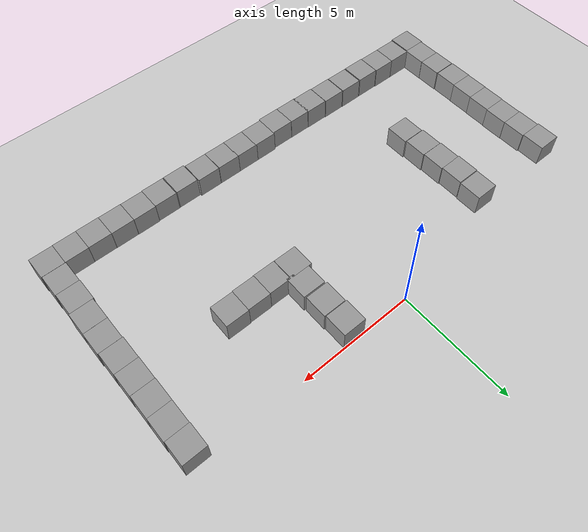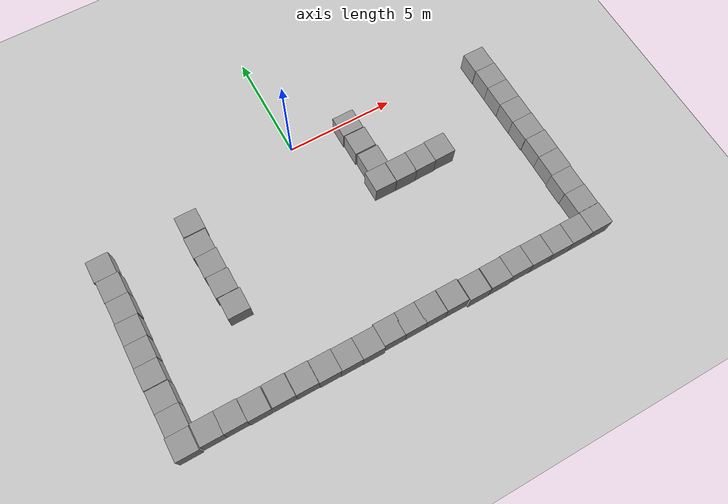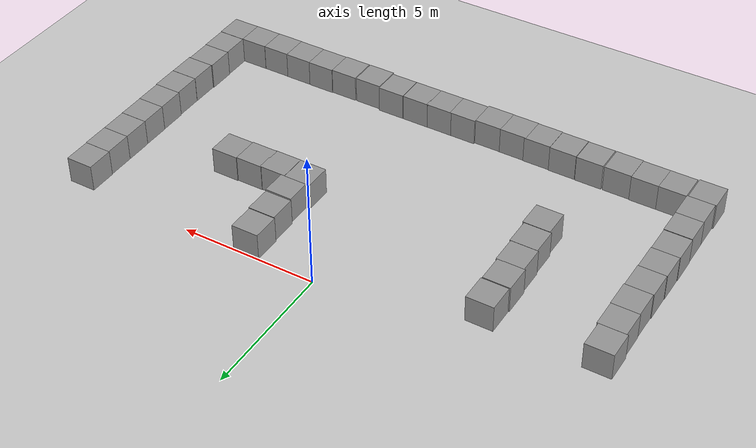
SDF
<sdf version="1.7">
 <world name="default">
  <model name="ground_plane">
   <static>1</static>
   <link name="link">
    <collision name="collision">
     <geometry><plane><normal>0 0 1</normal><size>100 100</size></plane></geometry>
     <surface>
      <contact><collide_bitmask>65535</collide_bitmask></contact>
      <friction><ode><mu>100</mu><mu2>50</mu2></ode></friction>
     </surface>
    </collision>
    <visual name="visual">
     <cast_shadows>0</cast_shadows>
     <geometry><plane><normal>0 0 1</normal><size>100 100</size></plane></geometry>
     <material>
      <script><uri>file://media/materials/scripts/gazebo.material</uri><name>Gazebo/Grey</name></script>
     </material>
    </visual>
   </link>
  </model>
  <model name="unit_box">
   <pose>-9.51327 -9.50621 0.5 0 -0 -0.002436</pose>
   <link name="link">
    <inertial>
     <mass>1</mass>
     <inertia>
      <ixx>0.166667</ixx>
      <ixy>0</ixy>
      <ixz>0</ixz>
      <iyy>0.166667</iyy>
      <iyz>0</iyz>
      <izz>0.166667</izz>
     </inertia>
    </inertial>
    <collision name="collision"><geometry><box><size>1 1 1</size></box></geometry></collision>
    <visual name="visual">
     <geometry><box><size>1 1 1</size></box></geometry>
     <material>
      <script><name>Gazebo/Grey</name><uri>file://media/materials/scripts/gazebo.material</uri></script>
     </material>
    </visual>
   </link>
  </model>
  <model name="unit_box_0">
   <pose>-9.47183 -8.5063 0.5 -0 -0 -0.002438</pose>
   <link name="link">
    <inertial>
     <mass>1</mass>
     <inertia>
      <ixx>0.166667</ixx>
      <ixy>0</ixy>
      <ixz>0</ixz>
      <iyy>0.166667</iyy>
      <iyz>0</iyz>
      <izz>0.166667</izz>
     </inertia>
    </inertial>
    <collision name="collision"><geometry><box><size>1 1 1</size></box></geometry></collision>
    <visual name="visual">
     <geometry><box><size>1 1 1</size></box></geometry>
     <material>
      <script><name>Gazebo/Grey</name><uri>file://media/materials/scripts/gazebo.material</uri></script>
     </material>
    </visual>
   </link>
  </model>
  <model name="unit_box_0_clone">
   <pose>-9.47665 -7.53043 0.499995 0 -1e-05 -0.002496</pose>
   <link name="link">
    <inertial>
     <mass>1</mass>
     <inertia>
      <ixx>0.166667</ixx>
      <ixy>0</ixy>
      <ixz>0</ixz>
      <iyy>0.166667</iyy>
      <iyz>0</iyz>
      <izz>0.166667</izz>
     </inertia>
    </inertial>
    <collision name="collision"><geometry><box><size>1 1 1</size></box></geometry></collision>
    <visual name="visual">
     <geometry><box><size>1 1 1</size></box></geometry>
     <material>
      <script><name>Gazebo/Grey</name><uri>file://media/materials/scripts/gazebo.material</uri></script>
     </material>
    </visual>
   </link>
  </model>
  <model name="unit_box_0_clone_0">
   <pose>-9.49208 -6.5062 0.499995 0 -1e-05 -0.0025</pose>
   <link name="link">
    <inertial>
     <mass>1</mass>
     <inertia>
      <ixx>0.166667</ixx>
      <ixy>0</ixy>
      <ixz>0</ixz>
      <iyy>0.166667</iyy>
      <iyz>0</iyz>
      <izz>0.166667</izz>
     </inertia>
    </inertial>
    <collision name="collision"><geometry><box><size>1 1 1</size></box></geometry></collision>
    <visual name="visual">
     <geometry><box><size>1 1 1</size></box></geometry>
     <material>
      <script><name>Gazebo/Grey</name><uri>file://media/materials/scripts/gazebo.material</uri></script>
     </material>
    </visual>
   </link>
  </model>
  <model name="unit_box_0_clone_1">
   <pose>-9.47626 -5.50624 0.499995 0 -1e-05 -0.002502</pose>
   <link name="link">
    <inertial>
     <mass>1</mass>
     <inertia>
      <ixx>0.166667</ixx>
      <ixy>0</ixy>
      <ixz>0</ixz>
      <iyy>0.166667</iyy>
      <iyz>0</iyz>
      <izz>0.166667</izz>
     </inertia>
    </inertial>
    <collision name="collision"><geometry><box><size>1 1 1</size></box></geometry></collision>
    <visual name="visual">
     <geometry><box><size>1 1 1</size></box></geometry>
     <material>
      <script><name>Gazebo/Grey</name><uri>file://media/materials/scripts/gazebo.material</uri></script>
     </material>
    </visual>
   </link>
  </model>
  <model name="unit_box_0_clone_2">
   <pose>-9.4605 -4.50624 0.5 -0 -0 -0.002559</pose>
   <link name="link">
    <inertial>
     <mass>1</mass>
     <inertia>
      <ixx>0.166667</ixx>
      <ixy>0</ixy>
      <ixz>0</ixz>
      <iyy>0.166667</iyy>
      <iyz>0</iyz>
      <izz>0.166667</izz>
     </inertia>
    </inertial>
    <collision name="collision"><geometry><box><size>1 1 1</size></box></geometry></collision>
    <visual name="visual">
     <geometry><box><size>1 1 1</size></box></geometry>
     <material>
      <script><name>Gazebo/Grey</name><uri>file://media/materials/scripts/gazebo.material</uri></script>
     </material>
    </visual>
   </link>
  </model>
  <model name="unit_box_0_clone_3">
   <pose>-9.43668 -3.50629 0.499995 -1e-05 0 -0.002576</pose>
   <link name="link">
    <inertial>
     <mass>1</mass>
     <inertia>
      <ixx>0.166667</ixx>
      <ixy>0</ixy>
      <ixz>0</ixz>
      <iyy>0.166667</iyy>
      <iyz>0</iyz>
      <izz>0.166667</izz>
     </inertia>
    </inertial>
    <collision name="collision"><geometry><box><size>1 1 1</size></box></geometry></collision>
    <visual name="visual">
     <geometry><box><size>1 1 1</size></box></geometry>
     <material>
      <script><name>Gazebo/Grey</name><uri>file://media/materials/scripts/gazebo.material</uri></script>
     </material>
    </visual>
   </link>
  </model>
  <model name="unit_box_0_clone_4">
   <pose>-9.44901 -2.50624 0.5 0 0 -0.002604</pose>
   <link name="link">
    <inertial>
     <mass>1</mass>
     <inertia>
      <ixx>0.166667</ixx>
      <ixy>0</ixy>
      <ixz>0</ixz>
      <iyy>0.166667</iyy>
      <iyz>0</iyz>
      <izz>0.166667</izz>
     </inertia>
    </inertial>
    <collision name="collision"><geometry><box><size>1 1 1</size></box></geometry></collision>
    <visual name="visual">
     <geometry><box><size>1 1 1</size></box></geometry>
     <material>
      <script><name>Gazebo/Grey</name><uri>file://media/materials/scripts/gazebo.material</uri></script>
     </material>
    </visual>
   </link>
  </model>
  <model name="unit_box_0_clone_5">
   <pose>-9.49911 -1.50602 0.5 0 0 -0.002766</pose>
   <link name="link">
    <inertial>
     <mass>1</mass>
     <inertia>
      <ixx>0.166667</ixx>
      <ixy>0</ixy>
      <ixz>0</ixz>
      <iyy>0.166667</iyy>
      <iyz>0</iyz>
      <izz>0.166667</izz>
     </inertia>
    </inertial>
    <collision name="collision"><geometry><box><size>1 1 1</size></box></geometry></collision>
    <visual name="visual">
     <geometry><box><size>1 1 1</size></box></geometry>
     <material>
      <script><name>Gazebo/Grey</name><uri>file://media/materials/scripts/gazebo.material</uri></script>
     </material>
    </visual>
   </link>
  </model>
  <model name="unit_box_0_clone_45">
   <pose>9.46141 -0.551452 0.499995 0 1e-05 -0.001599</pose>
   <link name="link">
    <inertial>
     <mass>1</mass>
     <inertia>
      <ixx>0.166667</ixx>
      <ixy>0</ixy>
      <ixz>0</ixz>
      <iyy>0.166667</iyy>
      <iyz>0</iyz>
      <izz>0.166667</izz>
     </inertia>
    </inertial>
    <collision name="collision"><geometry><box><size>1 1 1</size></box></geometry></collision>
    <visual name="visual">
     <geometry><box><size>1 1 1</size></box></geometry>
     <material>
      <script><name>Gazebo/Grey</name><uri>file://media/materials/scripts/gazebo.material</uri></script>
     </material>
    </visual>
   </link>
  </model>
  <model name="unit_box_0_clone_46">
   <pose>9.47739 -1.55163 0.5 1e-06 -0 -0.001295</pose>
   <link name="link">
    <inertial>
     <mass>1</mass>
     <inertia>
      <ixx>0.166667</ixx>
      <ixy>0</ixy>
      <ixz>0</ixz>
      <iyy>0.166667</iyy>
      <iyz>0</iyz>
      <izz>0.166667</izz>
     </inertia>
    </inertial>
    <collision name="collision"><geometry><box><size>1 1 1</size></box></geometry></collision>
    <visual name="visual">
     <geometry><box><size>1 1 1</size></box></geometry>
     <material>
      <script><name>Gazebo/Grey</name><uri>file://media/materials/scripts/gazebo.material</uri></script>
     </material>
    </visual>
   </link>
  </model>
  <model name="unit_box_0_clone_47">
   <pose>9.47653 -2.55164 0.5 -1e-06 -0 -0.001294</pose>
   <link name="link">
    <inertial>
     <mass>1</mass>
     <inertia>
      <ixx>0.166667</ixx>
      <ixy>0</ixy>
      <ixz>0</ixz>
      <iyy>0.166667</iyy>
      <iyz>0</iyz>
      <izz>0.166667</izz>
     </inertia>
    </inertial>
    <collision name="collision"><geometry><box><size>1 1 1</size></box></geometry></collision>
    <visual name="visual">
     <geometry><box><size>1 1 1</size></box></geometry>
     <material>
      <script><name>Gazebo/Grey</name><uri>file://media/materials/scripts/gazebo.material</uri></script>
     </material>
    </visual>
   </link>
  </model>
  <model name="unit_box_0_clone_48">
   <pose>9.48417 -3.55209 0.499995 0 -1e-05 -0.001107</pose>
   <link name="link">
    <inertial>
     <mass>1</mass>
     <inertia>
      <ixx>0.166667</ixx>
      <ixy>0</ixy>
      <ixz>0</ixz>
      <iyy>0.166667</iyy>
      <iyz>0</iyz>
      <izz>0.166667</izz>
     </inertia>
    </inertial>
    <collision name="collision"><geometry><box><size>1 1 1</size></box></geometry></collision>
    <visual name="visual">
     <geometry><box><size>1 1 1</size></box></geometry>
     <material>
      <script><name>Gazebo/Grey</name><uri>file://media/materials/scripts/gazebo.material</uri></script>
     </material>
    </visual>
   </link>
  </model>
  <model name="unit_box_0_clone_49">
   <pose>9.49225 -4.55211 0.499995 -0 -1e-05 -0.0011</pose>
   <link name="link">
    <inertial>
     <mass>1</mass>
     <inertia>
      <ixx>0.166667</ixx>
      <ixy>0</ixy>
      <ixz>0</ixz>
      <iyy>0.166667</iyy>
      <iyz>0</iyz>
      <izz>0.166667</izz>
     </inertia>
    </inertial>
    <collision name="collision"><geometry><box><size>1 1 1</size></box></geometry></collision>
    <visual name="visual">
     <geometry><box><size>1 1 1</size></box></geometry>
     <material>
      <script><name>Gazebo/Grey</name><uri>file://media/materials/scripts/gazebo.material</uri></script>
     </material>
    </visual>
   </link>
  </model>
  <model name="unit_box_0_clone_50">
   <pose>9.51872 -5.55255 0.499995 0 1e-05 -0.001275</pose>
   <link name="link">
    <inertial>
     <mass>1</mass>
     <inertia>
      <ixx>0.166667</ixx>
      <ixy>0</ixy>
      <ixz>0</ixz>
      <iyy>0.166667</iyy>
      <iyz>0</iyz>
      <izz>0.166667</izz>
     </inertia>
    </inertial>
    <collision name="collision"><geometry><box><size>1 1 1</size></box></geometry></collision>
    <visual name="visual">
     <geometry><box><size>1 1 1</size></box></geometry>
     <material>
      <script><name>Gazebo/Grey</name><uri>file://media/materials/scripts/gazebo.material</uri></script>
     </material>
    </visual>
   </link>
  </model>
  <model name="unit_box_0_clone_51">
   <pose>9.51322 -6.55333 0.5 0 -0 -0.001544</pose>
   <link name="link">
    <inertial>
     <mass>1</mass>
     <inertia>
      <ixx>0.166667</ixx>
      <ixy>0</ixy>
      <ixz>0</ixz>
      <iyy>0.166667</iyy>
      <iyz>0</iyz>
      <izz>0.166667</izz>
     </inertia>
    </inertial>
    <collision name="collision"><geometry><box><size>1 1 1</size></box></geometry></collision>
    <visual name="visual">
     <geometry><box><size>1 1 1</size></box></geometry>
     <material>
      <script><name>Gazebo/Grey</name><uri>file://media/materials/scripts/gazebo.material</uri></script>
     </material>
    </visual>
   </link>
  </model>
  <model name="unit_box_0_clone_52">
   <pose>9.47953 -7.55339 0.499995 0 -1e-05 -0.001786</pose>
   <link name="link">
    <inertial>
     <mass>1</mass>
     <inertia>
      <ixx>0.166667</ixx>
      <ixy>0</ixy>
      <ixz>0</ixz>
      <iyy>0.166667</iyy>
      <iyz>0</iyz>
      <izz>0.166667</izz>
     </inertia>
    </inertial>
    <collision name="collision"><geometry><box><size>1 1 1</size></box></geometry></collision>
    <visual name="visual">
     <geometry><box><size>1 1 1</size></box></geometry>
     <material>
      <script><name>Gazebo/Grey</name><uri>file://media/materials/scripts/gazebo.material</uri></script>
     </material>
    </visual>
   </link>
  </model>
  <model name="unit_box_0_clone_53">
   <pose>9.49521 -8.55344 0.5 0 0 -0.00182</pose>
   <link name="link">
    <inertial>
     <mass>1</mass>
     <inertia>
      <ixx>0.166667</ixx>
      <ixy>0</ixy>
      <ixz>0</ixz>
      <iyy>0.166667</iyy>
      <iyz>0</iyz>
      <izz>0.166667</izz>
     </inertia>
    </inertial>
    <collision name="collision"><geometry><box><size>1 1 1</size></box></geometry></collision>
    <visual name="visual">
     <geometry><box><size>1 1 1</size></box></geometry>
     <material>
      <script><name>Gazebo/Grey</name><uri>file://media/materials/scripts/gazebo.material</uri></script>
     </material>
    </visual>
   </link>
  </model>
  <model name="unit_box_0_clone_54">
   <pose>9.51539 -9.55784 0.5 -0 -0 -0.001477</pose>
   <link name="link">
    <inertial>
     <mass>1</mass>
     <inertia>
      <ixx>0.166667</ixx>
      <ixy>0</ixy>
      <ixz>0</ixz>
      <iyy>0.166667</iyy>
      <iyz>0</iyz>
      <izz>0.166667</izz>
     </inertia>
    </inertial>
    <collision name="collision"><geometry><box><size>1 1 1</size></box></geometry></collision>
    <visual name="visual">
     <geometry><box><size>1 1 1</size></box></geometry>
     <material>
      <script><name>Gazebo/Grey</name><uri>file://media/materials/scripts/gazebo.material</uri></script>
     </material>
    </visual>
   </link>
  </model>
  <model name="unit_box_0_clone_55">
   <pose>8.51534 -9.5654 0.5 0 0 -0.001417</pose>
   <link name="link">
    <inertial>
     <mass>1</mass>
     <inertia>
      <ixx>0.166667</ixx>
      <ixy>0</ixy>
      <ixz>0</ixz>
      <iyy>0.166667</iyy>
      <iyz>0</iyz>
      <izz>0.166667</izz>
     </inertia>
    </inertial>
    <collision name="collision"><geometry><box><size>1 1 1</size></box></geometry></collision>
    <visual name="visual">
     <geometry><box><size>1 1 1</size></box></geometry>
     <material>
      <script><name>Gazebo/Grey</name><uri>file://media/materials/scripts/gazebo.material</uri></script>
     </material>
    </visual>
   </link>
  </model>
  <model name="unit_box_0_clone_56">
   <pose>7.51533 -9.5691 0.5 -0 -0 -0.00142</pose>
   <link name="link">
    <inertial>
     <mass>1</mass>
     <inertia>
      <ixx>0.166667</ixx>
      <ixy>0</ixy>
      <ixz>0</ixz>
      <iyy>0.166667</iyy>
      <iyz>0</iyz>
      <izz>0.166667</izz>
     </inertia>
    </inertial>
    <collision name="collision"><geometry><box><size>1 1 1</size></box></geometry></collision>
    <visual name="visual">
     <geometry><box><size>1 1 1</size></box></geometry>
     <material>
      <script><name>Gazebo/Grey</name><uri>file://media/materials/scripts/gazebo.material</uri></script>
     </material>
    </visual>
   </link>
  </model>
  <model name="unit_box_0_clone_57">
   <pose>6.51518 -9.55776 0.499995 1e-05 0 -0.001227</pose>
   <link name="link">
    <inertial>
     <mass>1</mass>
     <inertia>
      <ixx>0.166667</ixx>
      <ixy>0</ixy>
      <ixz>0</ixz>
      <iyy>0.166667</iyy>
      <iyz>0</iyz>
      <izz>0.166667</izz>
     </inertia>
    </inertial>
    <collision name="collision"><geometry><box><size>1 1 1</size></box></geometry></collision>
    <visual name="visual">
     <geometry><box><size>1 1 1</size></box></geometry>
     <material>
      <script><name>Gazebo/Grey</name><uri>file://media/materials/scripts/gazebo.material</uri></script>
     </material>
    </visual>
   </link>
  </model>
  <model name="unit_box_0_clone_58">
   <pose>5.51516 -9.54723 0.499995 0 1e-05 -0.001166</pose>
   <link name="link">
    <inertial>
     <mass>1</mass>
     <inertia>
      <ixx>0.166667</ixx>
      <ixy>0</ixy>
      <ixz>0</ixz>
      <iyy>0.166667</iyy>
      <iyz>0</iyz>
      <izz>0.166667</izz>
     </inertia>
    </inertial>
    <collision name="collision"><geometry><box><size>1 1 1</size></box></geometry></collision>
    <visual name="visual">
     <geometry><box><size>1 1 1</size></box></geometry>
     <material>
      <script><name>Gazebo/Grey</name><uri>file://media/materials/scripts/gazebo.material</uri></script>
     </material>
    </visual>
   </link>
  </model>
  <model name="unit_box_0_clone_59">
   <pose>4.51512 -9.56756 0.499995 -1e-05 -0 -0.00117</pose>
   <link name="link">
    <inertial>
     <mass>1</mass>
     <inertia>
      <ixx>0.166667</ixx>
      <ixy>0</ixy>
      <ixz>0</ixz>
      <iyy>0.166667</iyy>
      <iyz>0</iyz>
      <izz>0.166667</izz>
     </inertia>
    </inertial>
    <collision name="collision"><geometry><box><size>1 1 1</size></box></geometry></collision>
    <visual name="visual">
     <geometry><box><size>1 1 1</size></box></geometry>
     <material>
      <script><name>Gazebo/Grey</name><uri>file://media/materials/scripts/gazebo.material</uri></script>
     </material>
    </visual>
   </link>
  </model>
  <model name="unit_box_0_clone_60">
   <pose>3.48139 -9.57489 0.5 0 0 -0.002438</pose>
   <link name="link">
    <inertial>
     <mass>1</mass>
     <inertia>
      <ixx>0.166667</ixx>
      <ixy>0</ixy>
      <ixz>0</ixz>
      <iyy>0.166667</iyy>
      <iyz>0</iyz>
      <izz>0.166667</izz>
     </inertia>
    </inertial>
    <collision name="collision"><geometry><box><size>1 1 1</size></box></geometry></collision>
    <visual name="visual">
     <geometry><box><size>1 1 1</size></box></geometry>
     <material>
      <script><name>Gazebo/Grey</name><uri>file://media/materials/scripts/gazebo.material</uri></script>
     </material>
    </visual>
   </link>
  </model>
  <model name="unit_box_0_clone_61">
   <pose>2.45456 -9.4995 0.5 0 0 -0.002438</pose>
   <link name="link">
    <inertial>
     <mass>1</mass>
     <inertia>
      <ixx>0.166667</ixx>
      <ixy>0</ixy>
      <ixz>0</ixz>
      <iyy>0.166667</iyy>
      <iyz>0</iyz>
      <izz>0.166667</izz>
     </inertia>
    </inertial>
    <collision name="collision"><geometry><box><size>1 1 1</size></box></geometry></collision>
    <visual name="visual">
     <geometry><box><size>1 1 1</size></box></geometry>
     <material>
      <script><name>Gazebo/Grey</name><uri>file://media/materials/scripts/gazebo.material</uri></script>
     </material>
    </visual>
   </link>
  </model>
  <model name="unit_box_0_clone_62">
   <pose>1.44089 -9.49968 0.5 0 0 -0.002438</pose>
   <link name="link">
    <inertial>
     <mass>1</mass>
     <inertia>
      <ixx>0.166667</ixx>
      <ixy>0</ixy>
      <ixz>0</ixz>
      <iyy>0.166667</iyy>
      <iyz>0</iyz>
      <izz>0.166667</izz>
     </inertia>
    </inertial>
    <collision name="collision"><geometry><box><size>1 1 1</size></box></geometry></collision>
    <visual name="visual">
     <geometry><box><size>1 1 1</size></box></geometry>
     <material>
      <script><name>Gazebo/Grey</name><uri>file://media/materials/scripts/gazebo.material</uri></script>
     </material>
    </visual>
   </link>
  </model>
  <model name="unit_box_0_clone_63">
   <pose>0.473666 -9.50091 0.5 0 0 -0.002438</pose>
   <link name="link">
    <inertial>
     <mass>1</mass>
     <inertia>
      <ixx>0.166667</ixx>
      <ixy>0</ixy>
      <ixz>0</ixz>
      <iyy>0.166667</iyy>
      <iyz>0</iyz>
      <izz>0.166667</izz>
     </inertia>
    </inertial>
    <collision name="collision"><geometry><box><size>1 1 1</size></box></geometry></collision>
    <visual name="visual">
     <geometry><box><size>1 1 1</size></box></geometry>
     <material>
      <script><name>Gazebo/Grey</name><uri>file://media/materials/scripts/gazebo.material</uri></script>
     </material>
    </visual>
   </link>
  </model>
  <model name="unit_box_0_clone_64">
   <pose>-0.47754 -9.49986 0.5 0 0 -0.002438</pose>
   <link name="link">
    <inertial>
     <mass>1</mass>
     <inertia>
      <ixx>0.166667</ixx>
      <ixy>0</ixy>
      <ixz>0</ixz>
      <iyy>0.166667</iyy>
      <iyz>0</iyz>
      <izz>0.166667</izz>
     </inertia>
    </inertial>
    <collision name="collision"><geometry><box><size>1 1 1</size></box></geometry></collision>
    <visual name="visual">
     <geometry><box><size>1 1 1</size></box></geometry>
     <material>
      <script><name>Gazebo/Grey</name><uri>file://media/materials/scripts/gazebo.material</uri></script>
     </material>
    </visual>
   </link>
  </model>
  <model name="unit_box_0_clone_65">
   <pose>-1.47741 -9.55915 0.5 0 0 -0.002438</pose>
   <link name="link">
    <inertial>
     <mass>1</mass>
     <inertia>
      <ixx>0.166667</ixx>
      <ixy>0</ixy>
      <ixz>0</ixz>
      <iyy>0.166667</iyy>
      <iyz>0</iyz>
      <izz>0.166667</izz>
     </inertia>
    </inertial>
    <collision name="collision"><geometry><box><size>1 1 1</size></box></geometry></collision>
    <visual name="visual">
     <geometry><box><size>1 1 1</size></box></geometry>
     <material>
      <script><name>Gazebo/Grey</name><uri>file://media/materials/scripts/gazebo.material</uri></script>
     </material>
    </visual>
   </link>
  </model>
  <model name="unit_box_0_clone_66">
   <pose>-2.46537 -9.54892 0.5 0 0 -0.002438</pose>
   <link name="link">
    <inertial>
     <mass>1</mass>
     <inertia>
      <ixx>0.166667</ixx>
      <ixy>0</ixy>
      <ixz>0</ixz>
      <iyy>0.166667</iyy>
      <iyz>0</iyz>
      <izz>0.166667</izz>
     </inertia>
    </inertial>
    <collision name="collision"><geometry><box><size>1 1 1</size></box></geometry></collision>
    <visual name="visual">
     <geometry><box><size>1 1 1</size></box></geometry>
     <material>
      <script><name>Gazebo/Grey</name><uri>file://media/materials/scripts/gazebo.material</uri></script>
     </material>
    </visual>
   </link>
  </model>
  <model name="unit_box_0_clone_67">
   <pose>-3.41063 -9.5298 0.5 0 0 -0.002438</pose>
   <link name="link">
    <inertial>
     <mass>1</mass>
     <inertia>
      <ixx>0.166667</ixx>
      <ixy>0</ixy>
      <ixz>0</ixz>
      <iyy>0.166667</iyy>
      <iyz>0</iyz>
      <izz>0.166667</izz>
     </inertia>
    </inertial>
    <collision name="collision"><geometry><box><size>1 1 1</size></box></geometry></collision>
    <visual name="visual">
     <geometry><box><size>1 1 1</size></box></geometry>
     <material>
      <script><name>Gazebo/Grey</name><uri>file://media/materials/scripts/gazebo.material</uri></script>
     </material>
    </visual>
   </link>
  </model>
  <model name="unit_box_0_clone_68">
   <pose>-4.41567 -9.50305 0.5 0 0 -0.002438</pose>
   <link name="link">
    <inertial>
     <mass>1</mass>
     <inertia>
      <ixx>0.166667</ixx>
      <ixy>0</ixy>
      <ixz>0</ixz>
      <iyy>0.166667</iyy>
      <iyz>0</iyz>
      <izz>0.166667</izz>
     </inertia>
    </inertial>
    <collision name="collision"><geometry><box><size>1 1 1</size></box></geometry></collision>
    <visual name="visual">
     <geometry><box><size>1 1 1</size></box></geometry>
     <material>
      <script><name>Gazebo/Grey</name><uri>file://media/materials/scripts/gazebo.material</uri></script>
     </material>
    </visual>
   </link>
  </model>
  <model name="unit_box_0_clone_69">
   <pose>-5.43577 -9.48739 0.5 0 0 -0.002438</pose>
   <link name="link">
    <inertial>
     <mass>1</mass>
     <inertia>
      <ixx>0.166667</ixx>
      <ixy>0</ixy>
      <ixz>0</ixz>
      <iyy>0.166667</iyy>
      <iyz>0</iyz>
      <izz>0.166667</izz>
     </inertia>
    </inertial>
    <collision name="collision"><geometry><box><size>1 1 1</size></box></geometry></collision>
    <visual name="visual">
     <geometry><box><size>1 1 1</size></box></geometry>
     <material>
      <script><name>Gazebo/Grey</name><uri>file://media/materials/scripts/gazebo.material</uri></script>
     </material>
    </visual>
   </link>
  </model>
  <model name="unit_box_0_clone_70">
   <pose>-6.47899 -9.48804 0.5 0 0 -0.002438</pose>
   <link name="link">
    <inertial>
     <mass>1</mass>
     <inertia>
      <ixx>0.166667</ixx>
      <ixy>0</ixy>
      <ixz>0</ixz>
      <iyy>0.166667</iyy>
      <iyz>0</iyz>
      <izz>0.166667</izz>
     </inertia>
    </inertial>
    <collision name="collision"><geometry><box><size>1 1 1</size></box></geometry></collision>
    <visual name="visual">
     <geometry><box><size>1 1 1</size></box></geometry>
     <material>
      <script><name>Gazebo/Grey</name><uri>file://media/materials/scripts/gazebo.material</uri></script>
     </material>
    </visual>
   </link>
  </model>
  <model name="unit_box_0_clone_71">
   <pose>-7.4821 -9.4612 0.5 0 0 -0.002438</pose>
   <link name="link">
    <inertial>
     <mass>1</mass>
     <inertia>
      <ixx>0.166667</ixx>
      <ixy>0</ixy>
      <ixz>0</ixz>
      <iyy>0.166667</iyy>
      <iyz>0</iyz>
      <izz>0.166667</izz>
     </inertia>
    </inertial>
    <collision name="collision"><geometry><box><size>1 1 1</size></box></geometry></collision>
    <visual name="visual">
     <geometry><box><size>1 1 1</size></box></geometry>
     <material>
      <script><name>Gazebo/Grey</name><uri>file://media/materials/scripts/gazebo.material</uri></script>
     </material>
    </visual>
   </link>
  </model>
  <model name="unit_box_0_clone_72">
   <pose>-8.47114 -9.45857 0.5 0 0 -0.002438</pose>
   <link name="link">
    <inertial>
     <mass>1</mass>
     <inertia>
      <ixx>0.166667</ixx>
      <ixy>0</ixy>
      <ixz>0</ixz>
      <iyy>0.166667</iyy>
      <iyz>0</iyz>
      <izz>0.166667</izz>
     </inertia>
    </inertial>
    <collision name="collision"><geometry><box><size>1 1 1</size></box></geometry></collision>
    <visual name="visual">
     <geometry><box><size>1 1 1</size></box></geometry>
     <material>
      <script><name>Gazebo/Grey</name><uri>file://media/materials/scripts/gazebo.material</uri></script>
     </material>
    </visual>
   </link>
  </model>
  <model name="unit_box_0_clone_73">
   <pose>-5.45749 -4.50791 0.5 0 0 -0.002438</pose>
   <link name="link">
    <inertial>
     <mass>1</mass>
     <inertia>
      <ixx>0.166667</ixx>
      <ixy>0</ixy>
      <ixz>0</ixz>
      <iyy>0.166667</iyy>
      <iyz>0</iyz>
      <izz>0.166667</izz>
     </inertia>
    </inertial>
    <collision name="collision"><geometry><box><size>1 1 1</size></box></geometry></collision>
    <visual name="visual">
     <geometry><box><size>1 1 1</size></box></geometry>
     <material>
      <script><name>Gazebo/Grey</name><uri>file://media/materials/scripts/gazebo.material</uri></script>
     </material>
    </visual>
   </link>
  </model>
  <model name="unit_box_0_clone_74">
   <pose>-5.49155 -3.50345 0.5 0 0 -0.002438</pose>
   <link name="link">
    <inertial>
     <mass>1</mass>
     <inertia>
      <ixx>0.166667</ixx>
      <ixy>0</ixy>
      <ixz>0</ixz>
      <iyy>0.166667</iyy>
      <iyz>0</iyz>
      <izz>0.166667</izz>
     </inertia>
    </inertial>
    <collision name="collision"><geometry><box><size>1 1 1</size></box></geometry></collision>
    <visual name="visual">
     <geometry><box><size>1 1 1</size></box></geometry>
     <material>
      <script><name>Gazebo/Grey</name><uri>file://media/materials/scripts/gazebo.material</uri></script>
     </material>
    </visual>
   </link>
  </model>
  <model name="unit_box_0_clone_75">
   <pose>-5.5319 -2.51285 0.5 0 0 -0.002438</pose>
   <link name="link">
    <inertial>
     <mass>1</mass>
     <inertia>
      <ixx>0.166667</ixx>
      <ixy>0</ixy>
      <ixz>0</ixz>
      <iyy>0.166667</iyy>
      <iyz>0</iyz>
      <izz>0.166667</izz>
     </inertia>
    </inertial>
    <collision name="collision"><geometry><box><size>1 1 1</size></box></geometry></collision>
    <visual name="visual">
     <geometry><box><size>1 1 1</size></box></geometry>
     <material>
      <script><name>Gazebo/Grey</name><uri>file://media/materials/scripts/gazebo.material</uri></script>
     </material>
    </visual>
   </link>
  </model>
  <model name="unit_box_0_clone_76">
   <pose>-5.50179 -1.47884 0.5 0 0 -0.002438</pose>
   <link name="link">
    <inertial>
     <mass>1</mass>
     <inertia>
      <ixx>0.166667</ixx>
      <ixy>0</ixy>
      <ixz>0</ixz>
      <iyy>0.166667</iyy>
      <iyz>0</iyz>
      <izz>0.166667</izz>
     </inertia>
    </inertial>
    <collision name="collision"><geometry><box><size>1 1 1</size></box></geometry></collision>
    <visual name="visual">
     <geometry><box><size>1 1 1</size></box></geometry>
     <material>
      <script><name>Gazebo/Grey</name><uri>file://media/materials/scripts/gazebo.material</uri></script>
     </material>
    </visual>
   </link>
  </model>
  <model name="unit_box_0_clone_84">
   <pose>4.5283 -3.52529 0.5 0 0 -0.002438</pose>
   <link name="link">
    <inertial>
     <mass>1</mass>
     <inertia>
      <ixx>0.166667</ixx>
      <ixy>0</ixy>
      <ixz>0</ixz>
      <iyy>0.166667</iyy>
      <iyz>0</iyz>
      <izz>0.166667</izz>
     </inertia>
    </inertial>
    <collision name="collision"><geometry><box><size>1 1 1</size></box></geometry></collision>
    <visual name="visual">
     <geometry><box><size>1 1 1</size></box></geometry>
     <material>
      <script><name>Gazebo/Grey</name><uri>file://media/materials/scripts/gazebo.material</uri></script>
     </material>
    </visual>
   </link>
  </model>
  <model name="unit_box_0_clone_85">
   <pose>3.56514 -3.54008 0.5 0 0 -0.002438</pose>
   <link name="link">
    <inertial>
     <mass>1</mass>
     <inertia>
      <ixx>0.166667</ixx>
      <ixy>0</ixy>
      <ixz>0</ixz>
      <iyy>0.166667</iyy>
      <iyz>0</iyz>
      <izz>0.166667</izz>
     </inertia>
    </inertial>
    <collision name="collision"><geometry><box><size>1 1 1</size></box></geometry></collision>
    <visual name="visual">
     <geometry><box><size>1 1 1</size></box></geometry>
     <material>
      <script><name>Gazebo/Grey</name><uri>file://media/materials/scripts/gazebo.material</uri></script>
     </material>
    </visual>
   </link>
  </model>
  <model name="unit_box_0_clone_86">
   <pose>2.55408 -3.53163 0.5 0 0 -0.002438</pose>
   <link name="link">
    <inertial>
     <mass>1</mass>
     <inertia>
      <ixx>0.166667</ixx>
      <ixy>0</ixy>
      <ixz>0</ixz>
      <iyy>0.166667</iyy>
      <iyz>0</iyz>
      <izz>0.166667</izz>
     </inertia>
    </inertial>
    <collision name="collision"><geometry><box><size>1 1 1</size></box></geometry></collision>
    <visual name="visual">
     <geometry><box><size>1 1 1</size></box></geometry>
     <material>
      <script><name>Gazebo/Grey</name><uri>file://media/materials/scripts/gazebo.material</uri></script>
     </material>
    </visual>
   </link>
  </model>
  <model name="unit_box_0_clone_87">
   <pose>2.69967 -2.62114 0.5 0 0 -0.002438</pose>
   <link name="link">
    <inertial>
     <mass>1</mass>
     <inertia>
      <ixx>0.166667</ixx>
      <ixy>0</ixy>
      <ixz>0</ixz>
      <iyy>0.166667</iyy>
      <iyz>0</iyz>
      <izz>0.166667</izz>
     </inertia>
    </inertial>
    <collision name="collision"><geometry><box><size>1 1 1</size></box></geometry></collision>
    <visual name="visual">
     <geometry><box><size>1 1 1</size></box></geometry>
     <material>
      <script><name>Gazebo/Grey</name><uri>file://media/materials/scripts/gazebo.material</uri></script>
     </material>
    </visual>
   </link>
  </model>
  <model name="unit_box_0_clone_88">
   <pose>2.64761 -1.56263 0.5 0 0 -0.002438</pose>
   <link name="link">
    <inertial>
     <mass>1</mass>
     <inertia>
      <ixx>0.166667</ixx>
      <ixy>0</ixy>
      <ixz>0</ixz>
      <iyy>0.166667</iyy>
      <iyz>0</iyz>
      <izz>0.166667</izz>
     </inertia>
    </inertial>
    <collision name="collision"><geometry><box><size>1 1 1</size></box></geometry></collision>
    <visual name="visual">
     <geometry><box><size>1 1 1</size></box></geometry>
     <material>
      <script><name>Gazebo/Grey</name><uri>file://media/materials/scripts/gazebo.material</uri></script>
     </material>
    </visual>
   </link>
  </model>
  <model name="unit_box_0_clone_89">
   <pose>2.60655 -0.537864 0.5 0 0 -0.002438</pose>
   <link name="link">
    <inertial>
     <mass>1</mass>
     <inertia>
      <ixx>0.166667</ixx>
      <ixy>0</ixy>
      <ixz>0</ixz>
      <iyy>0.166667</iyy>
      <iyz>0</iyz>
      <izz>0.166667</izz>
     </inertia>
    </inertial>
    <collision name="collision"><geometry><box><size>1 1 1</size></box></geometry></collision>
    <visual name="visual">
     <geometry><box><size>1 1 1</size></box></geometry>
     <material>
      <script><name>Gazebo/Grey</name><uri>file://media/materials/scripts/gazebo.material</uri></script>
     </material>
    </visual>
   </link>
  </model>
  <model name="unit_box_0_clone_93">
   <pose>5.52748 -3.50305 0.5 0 0 -0.002438</pose>
   <link name="link">
    <inertial>
     <mass>1</mass>
     <inertia>
      <ixx>0.166667</ixx>
      <ixy>0</ixy>
      <ixz>0</ixz>
      <iyy>0.166667</iyy>
      <iyz>0</iyz>
      <izz>0.166667</izz>
     </inertia>
    </inertial>
    <collision name="collision"><geometry><box><size>1 1 1</size></box></geometry></collision>
    <visual name="visual">
     <geometry><box><size>1 1 1</size></box></geometry>
     <material>
      <script><name>Gazebo/Grey</name><uri>file://media/materials/scripts/gazebo.material</uri></script>
     </material>
    </visual>
   </link>
  </model>
  <model name="unit_box_0_clone_94">
   <pose>-5.39883 -5.52365 0.5 0 0 -0.002438</pose>
   <link name="link">
    <inertial>
     <mass>1</mass>
     <inertia>
      <ixx>0.166667</ixx>
      <ixy>0</ixy>
      <ixz>0</ixz>
      <iyy>0.166667</iyy>
      <iyz>0</iyz>
      <izz>0.166667</izz>
     </inertia>
    </inertial>
    <collision name="collision"><geometry><box><size>1 1 1</size></box></geometry></collision>
    <visual name="visual">
     <geometry><box><size>1 1 1</size></box></geometry>
     <material>
      <script><name>Gazebo/Grey</name><uri>file://media/materials/scripts/gazebo.material</uri></script>
     </material>
    </visual>
   </link>
  </model>
 </world>
</sdf>
